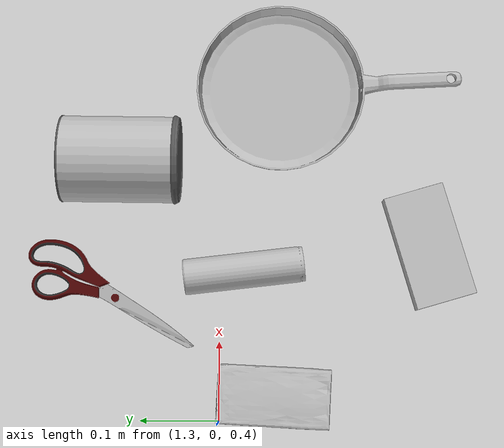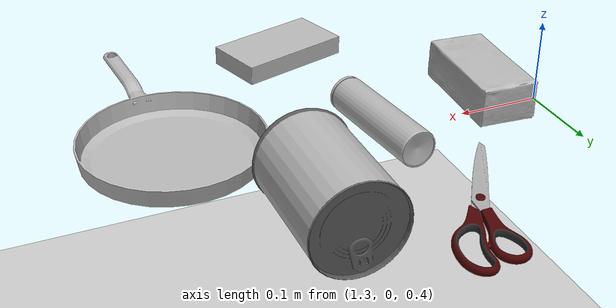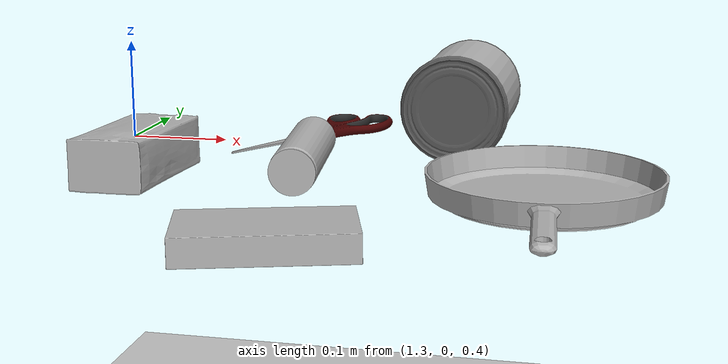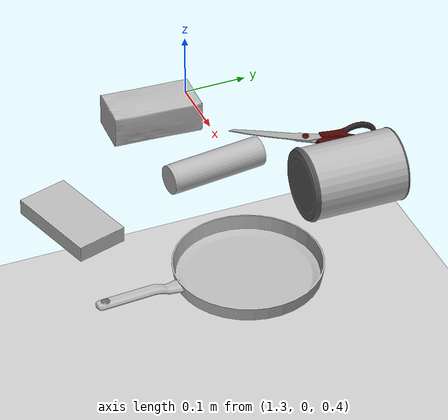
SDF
<sdf version="1.7">
 <world name="default">
  <light name="sun" type="directional">
   <pose>0 0 10 0 -0 0</pose>
   <diffuse>0.8 0.8 0.8 1</diffuse>
   <specular>0.2 0.2 0.2 1</specular>
   <attenuation>
    <range>1000</range>
    <constant>0.9</constant>
    <linear>0.01</linear>
    <quadratic>0.001</quadratic>
   </attenuation>
   <direction>-0.5 0.1 -0.9</direction>
   <spot><inner_angle>0</inner_angle><outer_angle>0</outer_angle><falloff>0</falloff></spot>
  </light>
  <model name="ground_plane">
   <static>1</static>
   <link name="link">
    <collision name="collision">
     <geometry><plane><normal>0 0 1</normal><size>100 100</size></plane></geometry>
     <surface><friction><ode><mu>100</mu><mu2>50</mu2></ode></friction></surface>
    </collision>
    <visual name="visual">
     <cast_shadows>0</cast_shadows>
     <geometry><plane><normal>0 0 1</normal><size>100 100</size></plane></geometry>
     <material>
      <script><uri>file://media/materials/scripts/gazebo.material</uri><name>Gazebo/Grey</name></script>
     </material>
    </visual>
   </link>
  </model>
  <gravity>0 0 -9.8</gravity>
  <magnetic_field>6e-06 2.3e-05 -4.2e-05</magnetic_field>
  <atmosphere type="adiabatic"/>
  <physics type="ode">
   <max_step_size>0.001</max_step_size>
   <real_time_factor>1</real_time_factor>
   <real_time_update_rate>1000</real_time_update_rate>
  </physics>
  <scene><ambient>0.4 0.4 0.4 1</ambient><background>0.7 0.7 0.7 1</background><shadows>1</shadows></scene>
  <spherical_coordinates>
   <surface_model>EARTH_WGS84</surface_model>
   <latitude_deg>0</latitude_deg>
   <longitude_deg>0</longitude_deg>
   <elevation>0</elevation>
   <heading_deg>0</heading_deg>
  </spherical_coordinates>
  <model name="oats_box">
   <link name="link">
    <inertial>
     <mass>0.1</mass>
     <inertia><ixx>1e-05</ixx><ixy>0</ixy><ixz>0</ixz><iyy>1e-05</iyy><iyz>0</iyz><izz>1e-05</izz></inertia>
    </inertial>
    <collision name="collision">
     <geometry><mesh><uri>/home/jan/ws_myrobot/src/myrobot/model/objects/oats/oats.dae</uri></mesh></geometry>
     <surface>
      <friction><ode><mu>1</mu><mu2>1</mu2></ode></friction>
      <contact><ode><kp>1e+07</kp><kd>1</kd><min_depth>0</min_depth><max_vel>0.01</max_vel></ode></contact>
     </surface>
    </collision>
    <visual name="visual">
     <geometry><mesh><uri>/home/jan/ws_myrobot/src/myrobot/model/objects/oats/oats.dae</uri></mesh></geometry>
     <material><lighting>1</lighting><shader type="pixel"/></material>
    </visual>
   </link>
   <static>0</static>
   <pose>1.33122 -0.069772 0.399793 -2.7042 1.54624 -1.18403</pose>
  </model>
  <model name="tea_box">
   <link name="link">
    <inertial>
     <mass>0.1</mass>
     <inertia><ixx>1e-05</ixx><ixy>0</ixy><ixz>0</ixz><iyy>1e-05</iyy><iyz>0</iyz><izz>1e-05</izz></inertia>
    </inertial>
    <collision name="collision">
     <geometry><mesh><uri>/home/jan/ws_myrobot/src/myrobot/model/objects/tea/tea.dae</uri></mesh></geometry>
     <surface>
      <friction><ode><mu>1</mu><mu2>1</mu2></ode></friction>
      <contact><ode><kp>1e+07</kp><kd>1</kd><min_depth>0</min_depth><max_vel>0.01</max_vel></ode></contact>
     </surface>
    </collision>
    <visual name="visual">
     <geometry><mesh><uri>/home/jan/ws_myrobot/src/myrobot/model/objects/tea/tea.dae</uri></mesh></geometry>
     <material><lighting>1</lighting><shader type="pixel"/></material>
    </visual>
   </link>
   <static>0</static>
   <pose>1.52522 -0.272231 0.385747 1.57073 -0.00012 1.85635</pose>
  </model>
  <model name="crisps_can">
   <link name="link">
    <inertial>
     <mass>0.1</mass>
     <inertia><ixx>1e-05</ixx><ixy>0</ixy><ixz>0</ixz><iyy>1e-05</iyy><iyz>0</iyz><izz>1e-05</izz></inertia>
    </inertial>
    <collision name="collision">
     <geometry><mesh><uri>/home/jan/ws_myrobot/src/myrobot/model/objects/crisps/crisps.dae</uri></mesh></geometry>
     <surface>
      <friction><ode><mu>1</mu><mu2>1</mu2></ode></friction>
      <contact><ode><kp>1e+07</kp><kd>1</kd><min_depth>0</min_depth><max_vel>0.01</max_vel></ode></contact>
     </surface>
    </collision>
    <visual name="visual">
     <geometry><mesh><uri>/home/jan/ws_myrobot/src/myrobot/model/objects/crisps/crisps.dae</uri></mesh></geometry>
     <material><lighting>1</lighting><shader type="pixel"/></material>
    </visual>
   </link>
   <static>0</static>
   <pose>1.49225 -0.033817 0.396245 -3.14159 -0.296581 -3.02377</pose>
  </model>
  <model name="soup_can">
   <link name="link">
    <inertial>
     <mass>0.1</mass>
     <inertia><ixx>1e-05</ixx><ixy>0</ixy><ixz>0</ixz><iyy>1e-05</iyy><iyz>0</iyz><izz>1e-05</izz></inertia>
    </inertial>
    <collision name="collision">
     <geometry><mesh><uri>/home/jan/ws_myrobot/src/myrobot/model/objects/soup/soup.dae</uri></mesh></geometry>
     <surface>
      <friction><ode><mu>1</mu><mu2>1</mu2></ode></friction>
      <contact><ode><kp>1e+07</kp><kd>1</kd><min_depth>0</min_depth><max_vel>0.01</max_vel></ode></contact>
     </surface>
    </collision>
    <visual name="visual">
     <geometry><mesh><uri>/home/jan/ws_myrobot/src/myrobot/model/objects/soup/soup.dae</uri></mesh></geometry>
     <material><lighting>1</lighting><shader type="pixel"/></material>
    </visual>
   </link>
   <static>0</static>
   <pose>1.63097 0.125065 0.429036 3.13645 0.096593 -0.008916</pose>
  </model>
  <model name="Scissors">
   <link name="link">
    <inertial>
     <mass>0.1</mass>
     <inertia><ixx>1e-05</ixx><ixy>0</ixy><ixz>0</ixz><iyy>1e-05</iyy><iyz>0</iyz><izz>1e-05</izz></inertia>
    </inertial>
    <collision name="collision">
     <geometry>
      <mesh><uri>/home/jan/ws_myrobot/src/myrobot/model/objects/scissors/scissors.dae</uri></mesh>
     </geometry>
     <surface>
      <friction><ode><mu>1</mu><mu2>1</mu2></ode></friction>
      <contact><ode><kp>1e+07</kp><kd>1</kd><min_depth>0</min_depth><max_vel>0.01</max_vel></ode></contact>
     </surface>
    </collision>
    <visual name="visual">
     <geometry>
      <mesh><uri>/home/jan/ws_myrobot/src/myrobot/model/objects/scissors/scissors.dae</uri></mesh>
     </geometry>
     <material><lighting>1</lighting><shader type="pixel"/></material>
    </visual>
   </link>
   <static>0</static>
   <pose>1.47336 0.173598 0.37816 0.002313 -0.001426 -0.570713</pose>
  </model>
  <model name="Frying_pan">
   <link name="link">
    <inertial>
     <mass>0.1</mass>
     <inertia><ixx>1e-05</ixx><ixy>0</ixy><ixz>0</ixz><iyy>1e-05</iyy><iyz>0</iyz><izz>1e-05</izz></inertia>
    </inertial>
    <collision name="collision">
     <geometry><mesh><uri>/home/jan/ws_myrobot/src/myrobot/model/objects/pan/pan.dae</uri></mesh></geometry>
     <surface>
      <friction><ode><mu>1</mu><mu2>1</mu2></ode></friction>
      <contact><ode><kp>1e+07</kp><kd>1</kd><min_depth>0</min_depth><max_vel>0.01</max_vel></ode></contact>
     </surface>
    </collision>
    <visual name="visual">
     <geometry><mesh><uri>/home/jan/ws_myrobot/src/myrobot/model/objects/pan/pan.dae</uri></mesh></geometry>
     <material><lighting>1</lighting><shader type="pixel"/></material>
    </visual>
   </link>
   <static>0</static>
   <pose>1.73385 -0.081845 0.374804 -1.57078 -1e-05 0.05421</pose>
  </model>
 </world>
</sdf>
